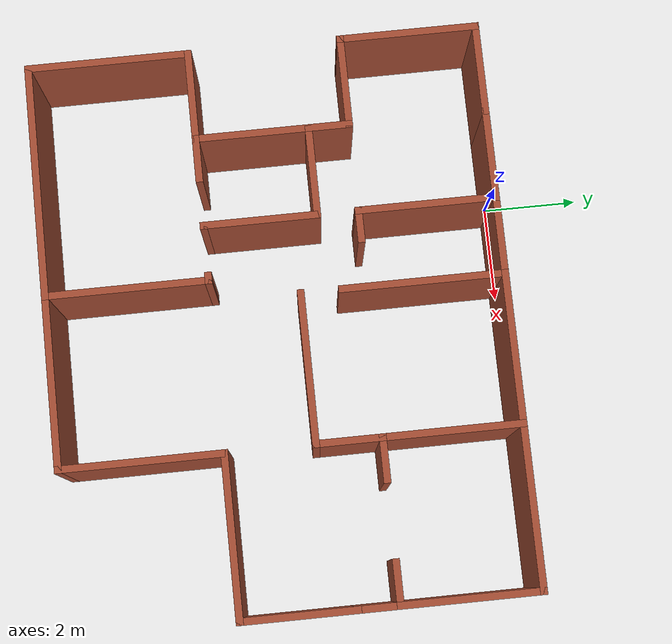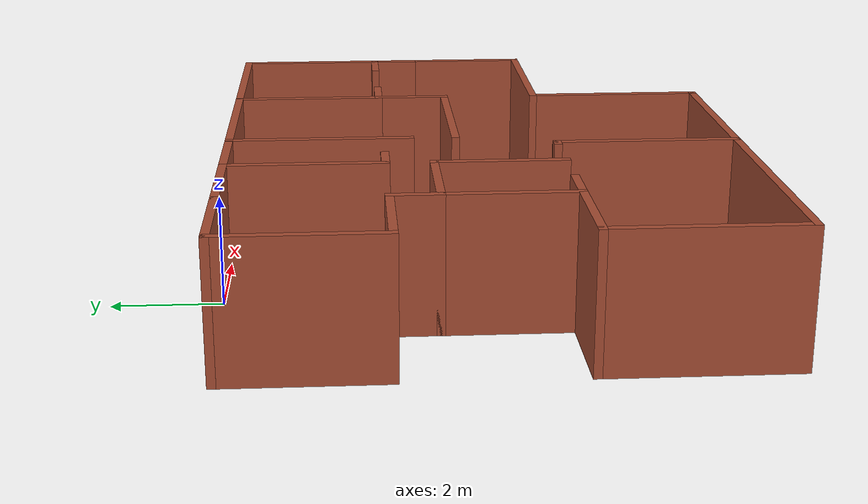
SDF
<?xml version='1.0'?>
<sdf version='1.7'>
  <model name='map'>
    <pose>2.46468 -4.75229 0 0 -0 0</pose>
    <link name='Wall_0'>
      <collision name='Wall_0_Collision'>
        <geometry>
          <box>
            <size>3 0.15 2.5</size>
          </box>
        </geometry>
        <pose>0 0 1.25 0 -0 0</pose>
      </collision>
      <visual name='Wall_0_Visual'>
        <pose>0 0 1.25 0 -0 0</pose>
        <geometry>
          <box>
            <size>3 0.15 2.5</size>
          </box>
        </geometry>
        <material>
          <script>
            <uri>file://media/materials/scripts/gazebo.material</uri>
            <name>Gazebo/Bricks</name>
          </script>
          <ambient>1 1 1 1</ambient>
        </material>
        <meta>
          <layer>0</layer>
        </meta>
      </visual>
      <pose>-5.875 3.275 0 0 -0 -1.5708</pose>
    </link>
    <link name='Wall_1'>
      <collision name='Wall_1_Collision'>
        <geometry>
          <box>
            <size>2 0.15 2.5</size>
          </box>
        </geometry>
        <pose>0 0 1.25 0 -0 0</pose>
      </collision>
      <visual name='Wall_1_Visual'>
        <pose>0 0 1.25 0 -0 0</pose>
        <geometry>
          <box>
            <size>2 0.15 2.5</size>
          </box>
        </geometry>
        <material>
          <script>
            <uri>file://media/materials/scripts/gazebo.material</uri>
            <name>Gazebo/Bricks</name>
          </script>
          <ambient>1 1 1 1</ambient>
        </material>
        <meta>
          <layer>0</layer>
        </meta>
      </visual>
      <pose>-4.95 1.85 0 0 -0 0</pose>
    </link>
    <link name='Wall_13'>
      <collision name='Wall_13_Collision'>
        <geometry>
          <box>
            <size>3.5 0.15 2.5</size>
          </box>
        </geometry>
        <pose>0 0 1.25 0 -0 0</pose>
      </collision>
      <visual name='Wall_13_Visual'>
        <pose>0 0 1.25 0 -0 0</pose>
        <geometry>
          <box>
            <size>3.5 0.15 2.5</size>
          </box>
        </geometry>
        <material>
          <script>
            <uri>file://media/materials/scripts/gazebo.material</uri>
            <name>Gazebo/Bricks</name>
          </script>
          <ambient>1 1 1 1</ambient>
        </material>
        <meta>
          <layer>0</layer>
        </meta>
      </visual>
      <pose>-0.575 3.025 0 0 -0 -1.5708</pose>
    </link>
    <link name='Wall_15'>
      <collision name='Wall_15_Collision'>
        <geometry>
          <box>
            <size>3.25 0.15 2.5</size>
          </box>
        </geometry>
        <pose>0 0 1.25 0 -0 0</pose>
      </collision>
      <visual name='Wall_15_Visual'>
        <pose>0 0 1.25 0 -0 0</pose>
        <geometry>
          <box>
            <size>3.25 0.15 2.5</size>
          </box>
        </geometry>
        <material>
          <script>
            <uri>file://media/materials/scripts/gazebo.material</uri>
            <name>Gazebo/Bricks</name>
          </script>
          <ambient>1 1 1 1</ambient>
        </material>
        <meta>
          <layer>0</layer>
        </meta>
      </visual>
      <pose>0.975001 4.7 0 0 -0 0</pose>
    </link>
    <link name='Wall_16'>
      <collision name='Wall_16_Collision'>
        <geometry>
          <box>
            <size>3 0.15 2.5</size>
          </box>
        </geometry>
        <pose>0 0 1.25 0 -0 0</pose>
      </collision>
      <visual name='Wall_16_Visual'>
        <pose>0 0 1.25 0 -0 0</pose>
        <geometry>
          <box>
            <size>3 0.15 2.5</size>
          </box>
        </geometry>
        <material>
          <script>
            <uri>file://media/materials/scripts/gazebo.material</uri>
            <name>Gazebo/Bricks</name>
          </script>
          <ambient>1 1 1 1</ambient>
        </material>
        <meta>
          <layer>0</layer>
        </meta>
      </visual>
      <pose>2.525 3.275 0 0 -0 -1.5708</pose>
    </link>
    <link name='Wall_17'>
      <collision name='Wall_17_Collision'>
        <geometry>
          <box>
            <size>1 0.15 2.5</size>
          </box>
        </geometry>
        <pose>0 0 1.25 0 -0 0</pose>
      </collision>
      <visual name='Wall_17_Visual'>
        <pose>0 0 1.25 0 -0 0</pose>
        <geometry>
          <box>
            <size>1 0.15 2.5</size>
          </box>
        </geometry>
        <material>
          <script>
            <uri>file://media/materials/scripts/gazebo.material</uri>
            <name>Gazebo/Bricks</name>
          </script>
          <ambient>1 1 1 1</ambient>
        </material>
        <meta>
          <layer>0</layer>
        </meta>
      </visual>
      <pose>2.95 1.85 0 0 -0 0</pose>
    </link>
    <link name='Wall_19'>
      <collision name='Wall_19_Collision'>
        <geometry>
          <box>
            <size>1.5 0.15 2.5</size>
          </box>
        </geometry>
        <pose>0 0 1.25 0 -0 0</pose>
      </collision>
      <visual name='Wall_19_Visual'>
        <pose>0 0 1.25 0 -0 0</pose>
        <geometry>
          <box>
            <size>1.5 0.15 2.5</size>
          </box>
        </geometry>
        <material>
          <script>
            <uri>file://media/materials/scripts/gazebo.material</uri>
            <name>Gazebo/Bricks</name>
          </script>
          <ambient>1 1 1 1</ambient>
        </material>
        <meta>
          <layer>0</layer>
        </meta>
      </visual>
      <pose>2.525 1.175 0 0 -0 -1.5708</pose>
    </link>
    <link name='Wall_2'>
      <collision name='Wall_2_Collision'>
        <geometry>
          <box>
            <size>1 0.15 2.5</size>
          </box>
        </geometry>
        <pose>0 0 1.25 0 -0 0</pose>
      </collision>
      <visual name='Wall_2_Visual'>
        <pose>0 0 1.25 0 -0 0</pose>
        <geometry>
          <box>
            <size>1 0.15 2.5</size>
          </box>
        </geometry>
        <material>
          <script>
            <uri>file://media/materials/scripts/gazebo.material</uri>
            <name>Gazebo/Bricks</name>
          </script>
          <ambient>1 1 1 1</ambient>
        </material>
        <meta>
          <layer>0</layer>
        </meta>
      </visual>
      <pose>-4.025 1.425 0 0 -0 -1.5708</pose>
    </link>
    <link name='Wall_20'>
      <collision name='Wall_20_Collision'>
        <geometry>
          <box>
            <size>3.25 0.15 2.5</size>
          </box>
        </geometry>
        <pose>0 0 1.25 0 -0 0</pose>
      </collision>
      <visual name='Wall_20_Visual'>
        <pose>0 0 1.25 0 -0 0</pose>
        <geometry>
          <box>
            <size>3.25 0.15 2.5</size>
          </box>
        </geometry>
        <material>
          <script>
            <uri>file://media/materials/scripts/gazebo.material</uri>
            <name>Gazebo/Bricks</name>
          </script>
          <ambient>1 1 1 1</ambient>
        </material>
        <meta>
          <layer>0</layer>
        </meta>
      </visual>
      <pose>0.975001 0.5 0 0 -0 3.14159</pose>
    </link>
    <link name='Wall_22'>
      <collision name='Wall_22_Collision'>
        <geometry>
          <box>
            <size>0.75 0.15 2.5</size>
          </box>
        </geometry>
        <pose>0 0 1.25 0 -0 0</pose>
      </collision>
      <visual name='Wall_22_Visual'>
        <pose>0 0 1.25 0 -0 0</pose>
        <geometry>
          <box>
            <size>0.75 0.15 2.5</size>
          </box>
        </geometry>
        <material>
          <script>
            <uri>file://media/materials/scripts/gazebo.material</uri>
            <name>Gazebo/Bricks</name>
          </script>
          <ambient>1 1 1 1</ambient>
        </material>
        <meta>
          <layer>0</layer>
        </meta>
      </visual>
      <pose>-1.875 1.85 0 0 -0 0</pose>
    </link>
    <link name='Wall_25'>
      <collision name='Wall_25_Collision'>
        <geometry>
          <box>
            <size>2.5 0.15 2.5</size>
          </box>
        </geometry>
        <pose>0 0 1.25 0 -0 0</pose>
      </collision>
      <visual name='Wall_25_Visual'>
        <pose>0 0 1.25 0 -0 0</pose>
        <geometry>
          <box>
            <size>2.5 0.15 2.5</size>
          </box>
        </geometry>
        <material>
          <script>
            <uri>file://media/materials/scripts/gazebo.material</uri>
            <name>Gazebo/Bricks</name>
          </script>
          <ambient>1 1 1 1</ambient>
        </material>
        <meta>
          <layer>0</layer>
        </meta>
      </visual>
      <pose>-4.025 -0.175 0 0 -0 -1.5708</pose>
    </link>
    <link name='Wall_26'>
      <collision name='Wall_26_Collision'>
        <geometry>
          <box>
            <size>2 0.15 2.5</size>
          </box>
        </geometry>
        <pose>0 0 1.25 0 -0 0</pose>
      </collision>
      <visual name='Wall_26_Visual'>
        <pose>0 0 1.25 0 -0 0</pose>
        <geometry>
          <box>
            <size>2 0.15 2.5</size>
          </box>
        </geometry>
        <material>
          <script>
            <uri>file://media/materials/scripts/gazebo.material</uri>
            <name>Gazebo/Bricks</name>
          </script>
          <ambient>1 1 1 1</ambient>
        </material>
        <meta>
          <layer>0</layer>
        </meta>
      </visual>
      <pose>-4.95 -1.35 0 0 -0 3.14159</pose>
    </link>
    <link name='Wall_27'>
      <collision name='Wall_27_Collision'>
        <geometry>
          <box>
            <size>3.5 0.15 2.5</size>
          </box>
        </geometry>
        <pose>0 0 1.25 0 -0 0</pose>
      </collision>
      <visual name='Wall_27_Visual'>
        <pose>0 0 1.25 0 -0 0</pose>
        <geometry>
          <box>
            <size>3.5 0.15 2.5</size>
          </box>
        </geometry>
        <material>
          <script>
            <uri>file://media/materials/scripts/gazebo.material</uri>
            <name>Gazebo/Bricks</name>
          </script>
          <ambient>1 1 1 1</ambient>
        </material>
        <meta>
          <layer>0</layer>
        </meta>
      </visual>
      <pose>-5.875 -3.025 0 0 -0 -1.5708</pose>
    </link>
    <link name='Wall_28'>
      <collision name='Wall_28_Collision'>
        <geometry>
          <box>
            <size>5 0.15 2.5</size>
          </box>
        </geometry>
        <pose>0 0 1.25 0 -0 0</pose>
      </collision>
      <visual name='Wall_28_Visual'>
        <pose>0 0 1.25 0 -0 0</pose>
        <geometry>
          <box>
            <size>5 0.15 2.5</size>
          </box>
        </geometry>
        <material>
          <script>
            <uri>file://media/materials/scripts/gazebo.material</uri>
            <name>Gazebo/Bricks</name>
          </script>
          <ambient>1 1 1 1</ambient>
        </material>
        <meta>
          <layer>0</layer>
        </meta>
      </visual>
      <pose>-3.45 -4.7 0 0 -0 0</pose>
    </link>
    <link name='Wall_29'>
      <collision name='Wall_29_Collision'>
        <geometry>
          <box>
            <size>3.5 0.15 2.5</size>
          </box>
        </geometry>
        <pose>0 0 1.25 0 -0 0</pose>
      </collision>
      <visual name='Wall_29_Visual'>
        <pose>0 0 1.25 0 -0 0</pose>
        <geometry>
          <box>
            <size>3.5 0.15 2.5</size>
          </box>
        </geometry>
        <material>
          <script>
            <uri>file://media/materials/scripts/gazebo.material</uri>
            <name>Gazebo/Bricks</name>
          </script>
          <ambient>1 1 1 1</ambient>
        </material>
        <meta>
          <layer>0</layer>
        </meta>
      </visual>
      <pose>-1.025 -3.025 0 0 -0 1.5708</pose>
    </link>
    <link name='Wall_3'>
      <collision name='Wall_3_Collision'>
        <geometry>
          <box>
            <size>2 0.15 2.5</size>
          </box>
        </geometry>
        <pose>0 0 1.25 0 -0 0</pose>
      </collision>
      <visual name='Wall_3_Visual'>
        <pose>0 0 1.25 0 -0 0</pose>
        <geometry>
          <box>
            <size>2 0.15 2.5</size>
          </box>
        </geometry>
        <material>
          <script>
            <uri>file://media/materials/scripts/gazebo.material</uri>
            <name>Gazebo/Bricks</name>
          </script>
          <ambient>1 1 1 1</ambient>
        </material>
        <meta>
          <layer>0</layer>
        </meta>
      </visual>
      <pose>-3.1 1 0 0 -0 0</pose>
    </link>
    <link name='Wall_31'>
      <collision name='Wall_31_Collision'>
        <geometry>
          <box>
            <size>2.5 0.15 2.5</size>
          </box>
        </geometry>
        <pose>0 0 1.25 0 -0 0</pose>
      </collision>
      <visual name='Wall_31_Visual'>
        <pose>0 0 1.25 0 -0 0</pose>
        <geometry>
          <box>
            <size>2.5 0.15 2.5</size>
          </box>
        </geometry>
        <material>
          <script>
            <uri>file://media/materials/scripts/gazebo.material</uri>
            <name>Gazebo/Bricks</name>
          </script>
          <ambient>1 1 1 1</ambient>
        </material>
        <meta>
          <layer>0</layer>
        </meta>
      </visual>
      <pose>-2.175 -0.175 0 0 -0 -1.5708</pose>
    </link>
    <link name='Wall_33'>
      <collision name='Wall_33_Collision'>
        <geometry>
          <box>
            <size>1 0.15 2.5</size>
          </box>
        </geometry>
        <pose>0 0 1.25 0 -0 0</pose>
      </collision>
      <visual name='Wall_33_Visual'>
        <pose>0 0 1.25 0 -0 0</pose>
        <geometry>
          <box>
            <size>1 0.15 2.5</size>
          </box>
        </geometry>
        <material>
          <script>
            <uri>file://media/materials/scripts/gazebo.material</uri>
            <name>Gazebo/Bricks</name>
          </script>
          <ambient>1 1 1 1</ambient>
        </material>
        <meta>
          <layer>0</layer>
        </meta>
      </visual>
      <pose>-3.6 -1.35 0 0 -0 0</pose>
    </link>
    <link name='Wall_35'>
      <collision name='Wall_35_Collision'>
        <geometry>
          <box>
            <size>0.25 0.15 2.5</size>
          </box>
        </geometry>
        <pose>0 0 1.25 0 -0 0</pose>
      </collision>
      <visual name='Wall_35_Visual'>
        <pose>0 0 1.25 0 -0 0</pose>
        <geometry>
          <box>
            <size>0.25 0.15 2.5</size>
          </box>
        </geometry>
        <material>
          <script>
            <uri>file://media/materials/scripts/gazebo.material</uri>
            <name>Gazebo/Bricks</name>
          </script>
          <ambient>1 1 1 1</ambient>
        </material>
        <meta>
          <layer>0</layer>
        </meta>
      </visual>
      <pose>-1.075 -1.35 0 0 -0 3.14159</pose>
    </link>
    <link name='Wall_37'>
      <collision name='Wall_37_Collision'>
        <geometry>
          <box>
            <size>0.15 0.15 2.5</size>
          </box>
        </geometry>
        <pose>0 0 1.25 0 -0 0</pose>
      </collision>
      <visual name='Wall_37_Visual'>
        <pose>0 0 1.25 0 -0 0</pose>
        <geometry>
          <box>
            <size>0.15 0.15 2.5</size>
          </box>
        </geometry>
        <material>
          <script>
            <uri>file://media/materials/scripts/gazebo.material</uri>
            <name>Gazebo/Bricks</name>
          </script>
          <ambient>1 1 1 1</ambient>
        </material>
        <meta>
          <layer>0</layer>
        </meta>
      </visual>
      <pose>-2.175 -1.35 0 0 -0 0</pose>
    </link>
    <link name='Wall_39'>
      <collision name='Wall_39_Collision'>
        <geometry>
          <box>
            <size>3.5 0.15 2.5</size>
          </box>
        </geometry>
        <pose>0 0 1.25 0 -0 0</pose>
      </collision>
      <visual name='Wall_39_Visual'>
        <pose>0 0 1.25 0 -0 0</pose>
        <geometry>
          <box>
            <size>3.5 0.15 2.5</size>
          </box>
        </geometry>
        <material>
          <script>
            <uri>file://media/materials/scripts/gazebo.material</uri>
            <name>Gazebo/Bricks</name>
          </script>
          <ambient>1 1 1 1</ambient>
        </material>
        <meta>
          <layer>0</layer>
        </meta>
      </visual>
      <pose>4.2 4.7 0 0 -0 0</pose>
    </link>
    <link name='Wall_40'>
      <collision name='Wall_40_Collision'>
        <geometry>
          <box>
            <size>3 0.15 2.5</size>
          </box>
        </geometry>
        <pose>0 0 1.25 0 -0 0</pose>
      </collision>
      <visual name='Wall_40_Visual'>
        <pose>0 0 1.25 0 -0 0</pose>
        <geometry>
          <box>
            <size>3 0.15 2.5</size>
          </box>
        </geometry>
        <material>
          <script>
            <uri>file://media/materials/scripts/gazebo.material</uri>
            <name>Gazebo/Bricks</name>
          </script>
          <ambient>1 1 1 1</ambient>
        </material>
        <meta>
          <layer>0</layer>
        </meta>
      </visual>
      <pose>5.875 3.275 0 0 -0 -1.5708</pose>
    </link>
    <link name='Wall_41'>
      <collision name='Wall_41_Collision'>
        <geometry>
          <box>
            <size>1 0.15 2.5</size>
          </box>
        </geometry>
        <pose>0 0 1.25 0 -0 0</pose>
      </collision>
      <visual name='Wall_41_Visual'>
        <pose>0 0 1.25 0 -0 0</pose>
        <geometry>
          <box>
            <size>1 0.15 2.5</size>
          </box>
        </geometry>
        <material>
          <script>
            <uri>file://media/materials/scripts/gazebo.material</uri>
            <name>Gazebo/Bricks</name>
          </script>
          <ambient>1 1 1 1</ambient>
        </material>
        <meta>
          <layer>0</layer>
        </meta>
      </visual>
      <pose>5.45 1.85 0 0 -0 3.14159</pose>
    </link>
    <link name='Wall_48'>
      <collision name='Wall_48_Collision'>
        <geometry>
          <box>
            <size>1 0.15 2.5</size>
          </box>
        </geometry>
        <pose>0 0 1.25 0 -0 0</pose>
      </collision>
      <visual name='Wall_48_Visual'>
        <pose>0 0 1.25 0 -0 0</pose>
        <geometry>
          <box>
            <size>1 0.15 2.5</size>
          </box>
        </geometry>
        <material>
          <script>
            <uri>file://media/materials/scripts/gazebo.material</uri>
            <name>Gazebo/Bricks</name>
          </script>
          <ambient>1 1 1 1</ambient>
        </material>
        <meta>
          <layer>0</layer>
        </meta>
      </visual>
      <pose>5.875 1.425 0 0 -0 -1.5708</pose>
    </link>
    <link name='Wall_49'>
      <collision name='Wall_49_Collision'>
        <geometry>
          <box>
            <size>2.5 0.15 2.5</size>
          </box>
        </geometry>
        <pose>0 0 1.25 0 -0 0</pose>
      </collision>
      <visual name='Wall_49_Visual'>
        <pose>0 0 1.25 0 -0 0</pose>
        <geometry>
          <box>
            <size>2.5 0.15 2.5</size>
          </box>
        </geometry>
        <material>
          <script>
            <uri>file://media/materials/scripts/gazebo.material</uri>
            <name>Gazebo/Bricks</name>
          </script>
          <ambient>1 1 1 1</ambient>
        </material>
        <meta>
          <layer>0</layer>
        </meta>
      </visual>
      <pose>5.875 -0.175 0 0 -0 -1.5708</pose>
    </link>
    <link name='Wall_5'>
      <collision name='Wall_5_Collision'>
        <geometry>
          <box>
            <size>2 0.15 2.5</size>
          </box>
        </geometry>
        <pose>0 0 1.25 0 -0 0</pose>
      </collision>
      <visual name='Wall_5_Visual'>
        <pose>0 0 1.25 0 -0 0</pose>
        <geometry>
          <box>
            <size>2 0.15 2.5</size>
          </box>
        </geometry>
        <material>
          <script>
            <uri>file://media/materials/scripts/gazebo.material</uri>
            <name>Gazebo/Bricks</name>
          </script>
          <ambient>1 1 1 1</ambient>
        </material>
        <meta>
          <layer>0</layer>
        </meta>
      </visual>
      <pose>-4.95 4.7 0 0 -0 0</pose>
    </link>
    <link name='Wall_50'>
      <collision name='Wall_50_Collision'>
        <geometry>
          <box>
            <size>3.5 0.15 2.5</size>
          </box>
        </geometry>
        <pose>0 0 1.25 0 -0 0</pose>
      </collision>
      <visual name='Wall_50_Visual'>
        <pose>0 0 1.25 0 -0 0</pose>
        <geometry>
          <box>
            <size>3.5 0.15 2.5</size>
          </box>
        </geometry>
        <material>
          <script>
            <uri>file://media/materials/scripts/gazebo.material</uri>
            <name>Gazebo/Bricks</name>
          </script>
          <ambient>1 1 1 1</ambient>
        </material>
        <meta>
          <layer>0</layer>
        </meta>
      </visual>
      <pose>4.2 -1.35 0 0 -0 3.14159</pose>
    </link>
    <link name='Wall_52'>
      <collision name='Wall_52_Collision'>
        <geometry>
          <box>
            <size>3.5 0.15 2.5</size>
          </box>
        </geometry>
        <pose>0 0 1.25 0 -0 0</pose>
      </collision>
      <visual name='Wall_52_Visual'>
        <pose>0 0 1.25 0 -0 0</pose>
        <geometry>
          <box>
            <size>3.5 0.15 2.5</size>
          </box>
        </geometry>
        <material>
          <script>
            <uri>file://media/materials/scripts/gazebo.material</uri>
            <name>Gazebo/Bricks</name>
          </script>
          <ambient>1 1 1 1</ambient>
        </material>
        <meta>
          <layer>0</layer>
        </meta>
      </visual>
      <pose>2.525 -3.025 0 0 -0 -1.5708</pose>
    </link>
    <link name='Wall_53'>
      <collision name='Wall_53_Collision'>
        <geometry>
          <box>
            <size>3.7 0.15 2.5</size>
          </box>
        </geometry>
        <pose>0 0 1.25 0 -0 0</pose>
      </collision>
      <visual name='Wall_53_Visual'>
        <pose>0 0 1.25 0 -0 0</pose>
        <geometry>
          <box>
            <size>3.7 0.15 2.5</size>
          </box>
        </geometry>
        <material>
          <script>
            <uri>file://media/materials/scripts/gazebo.material</uri>
            <name>Gazebo/Bricks</name>
          </script>
          <ambient>1 1 1 1</ambient>
        </material>
        <meta>
          <layer>0</layer>
        </meta>
      </visual>
      <pose>0.75 -4.7 0 0 -0 3.14159</pose>
    </link>
    <link name='Wall_6'>
      <collision name='Wall_6_Collision'>
        <geometry>
          <box>
            <size>2 0.15 2.5</size>
          </box>
        </geometry>
        <pose>0 0 1.25 0 -0 0</pose>
      </collision>
      <visual name='Wall_6_Visual'>
        <pose>0 0 1.25 0 -0 0</pose>
        <geometry>
          <box>
            <size>2 0.15 2.5</size>
          </box>
        </geometry>
        <material>
          <script>
            <uri>file://media/materials/scripts/gazebo.material</uri>
            <name>Gazebo/Bricks</name>
          </script>
          <ambient>1 1 1 1</ambient>
        </material>
        <meta>
          <layer>0</layer>
        </meta>
      </visual>
      <pose>-3.1 4.7 0 0 -0 0</pose>
    </link>
    <link name='Wall_7'>
      <collision name='Wall_7_Collision'>
        <geometry>
          <box>
            <size>3 0.15 2.5</size>
          </box>
        </geometry>
        <pose>0 0 1.25 0 -0 0</pose>
      </collision>
      <visual name='Wall_7_Visual'>
        <pose>0 0 1.25 0 -0 0</pose>
        <geometry>
          <box>
            <size>3 0.15 2.5</size>
          </box>
        </geometry>
        <material>
          <script>
            <uri>file://media/materials/scripts/gazebo.material</uri>
            <name>Gazebo/Bricks</name>
          </script>
          <ambient>1 1 1 1</ambient>
        </material>
        <meta>
          <layer>0</layer>
        </meta>
      </visual>
      <pose>-2.175 3.275 0 0 -0 -1.5708</pose>
    </link>
    <link name='Wall_9'>
      <collision name='Wall_9_Collision'>
        <geometry>
          <box>
            <size>1.75 0.15 2.5</size>
          </box>
        </geometry>
        <pose>0 0 1.25 0 -0 0</pose>
      </collision>
      <visual name='Wall_9_Visual'>
        <pose>0 0 1.25 0 -0 0</pose>
        <geometry>
          <box>
            <size>1.75 0.15 2.5</size>
          </box>
        </geometry>
        <material>
          <script>
            <uri>file://media/materials/scripts/gazebo.material</uri>
            <name>Gazebo/Bricks</name>
          </script>
          <ambient>1 1 1 1</ambient>
        </material>
        <meta>
          <layer>0</layer>
        </meta>
      </visual>
      <pose>-1.375 4.7 0 0 -0 0</pose>
    </link>
    <static>1</static>
  </model>
</sdf>
